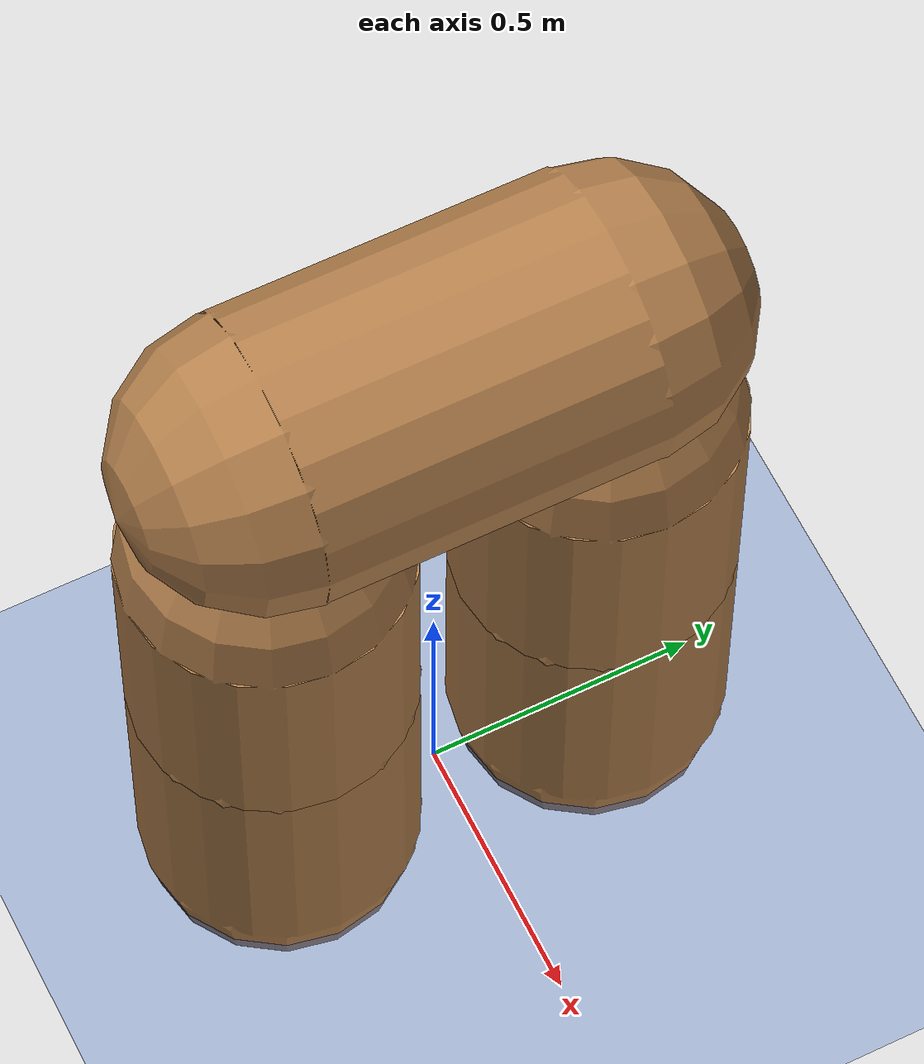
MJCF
<mujoco model="Softwalker">
  <option timestep="0.0025"/>

  <statistic extent="2" center="0 0 1"/>

  <visual>
    <headlight ambient=".4 .4 .4" diffuse=".8 .8 .8" specular="0.1 0.1 0.1"/>
    <map znear=".01"/>
    <quality shadowsize="2048"/>
    <global elevation="-15"/>
  </visual>

  <asset>
    <texture name="blue_grid" type="2d" builtin="checker" rgb1=".02 .14 .44" rgb2=".27 .55 1" width="300" height="300" mark="edge" markrgb="1 1 1"/>
    <material name="blue_grid" texture="blue_grid" texrepeat="1 1" texuniform="true" reflectance=".2"/>

    <texture name="grey_grid" type="2d" builtin="checker" rgb1=".26 .26 .26" rgb2=".6 .6 .6" width="300" height="300" mark="edge" markrgb="1 1 1"/>
    <material name="grey_grid" texture="grey_grid" texrepeat="1 1" texuniform="true" reflectance=".2"/>
    <texture name="skybox" type="skybox" builtin="gradient" rgb1=".66 .79 1" rgb2=".9 .91 .93" width="800" height="800"/>

    <material name="self" rgba=".7 .5 .3 1"/>
    <material name="self_default" rgba=".7 .5 .3 1"/>
    <material name="self_highlight" rgba="0 .5 .3 1"/>
    <material name="effector" rgba=".7 .4 .2 1"/>
    <material name="effector_default" rgba=".7 .4 .2 1"/>
    <material name="effector_highlight" rgba="0 .5 .3 1"/>
    <material name="decoration" rgba=".2 .6 .3 1"/>
    <material name="eye" rgba="0 .2 1 1"/>
    <material name="target" rgba=".6 .3 .3 1"/>
    <material name="target_default" rgba=".6 .3 .3 1"/>
    <material name="target_highlight" rgba=".6 .3 .3 .4"/>
    <material name="site_material" rgba=".5 .5 .5 .3"/>
  </asset>

  <default>
    <joint damping=".1" armature="0.01" limited="true" solimplimit="0 .99 .01"/>
    <geom contype="1" conaffinity="0" friction=".7 .1 .1"/>
    <motor ctrlrange="-1 1" ctrllimited="true"/>
    <site size="0.01"/>
    <default class="walker">
      <geom material="self" type="capsule"/>
      <joint axis="0 -1 0"/>
    </default>
  </default>

  <worldbody>
    <geom name="floor" type="plane" conaffinity="1" pos="998 0 0" size="1000 .8 .2" material="blue_grid" zaxis="0 0 1"/>
    <camera name="sideon" pos="0 -10 5" fovy="45" mode="targetbody" target="torso" />
    <camera name="float_far"  pos="-4 0 2" xyaxes="0 -1 0 .5 0 1" mode="trackcom" fovy="90"/>
    <body name="torso" pos="0 0 1.3" childclass="walker">
      <light name="light" pos="0 0 2" mode="trackcom"/>
      <camera name="floating"  pos="-2 0 1" xyaxes="0 -1 0 .5 0 1" mode="trackcom" fovy="90"/>
      <camera name="egocentric"  pos=".25 0 .11" xyaxes="0 -1 0 0 0 1" fovy="90" />
      <joint name="rootz" axis="0 0 1" type="slide" limited="false" armature="0" damping="0"/>
      <joint name="rootx" axis="1 0 0" type="slide" limited="false" armature="0" damping="0"/>
      <joint name="rooty" axis="0 1 0" type="hinge" limited="false" armature="0" damping="0"/>
      <geom name="torso" size="0.25 0.3" mass="10.673" zaxis="0 1 0"/>
      <site name="torso_site" pos="0 0 0" size="0.01"/>
      <body name="right_thigh" pos="0 -.3 -0.3">
        <joint name="right_hip" range="-20 100"/>
        <geom name="right_thigh" pos="0 0 -0.225" size="0.25 0.225" mass="4.05789"/>
        <body name="right_leg" pos="0 0 -0.7">
          <joint name="right_knee" pos="0 0 0.25" range="-150 0"/>
          <geom name="right_leg" size="0.25 0.25" mass="2.78136"/>
        </body>
      </body>
      <body name="left_thigh" pos="0 .3 -0.3" >
        <joint name="left_hip" range="-20 100"/>
        <geom name="left_thigh" pos="0 0 -0.225" size="0.25 0.225" mass="4.05789"/>
        <body name="left_leg" pos="0 0 -0.7">
          <joint name="left_knee" pos="0 0 0.25" range="-150 0"/>
          <geom name="left_leg" size="0.25 0.25" mass="2.78136"/>
        </body>
      </body>
    </body>
  </worldbody>

  <actuator>
    <motor name="right_hip" joint="right_hip" gear="100"/>
    <motor name="right_knee" joint="right_knee" gear="50"/>
    <motor name="left_hip" joint="left_hip" gear="100"/>
    <motor name="left_knee" joint="left_knee" gear="50"/>
  </actuator>
</mujoco>
